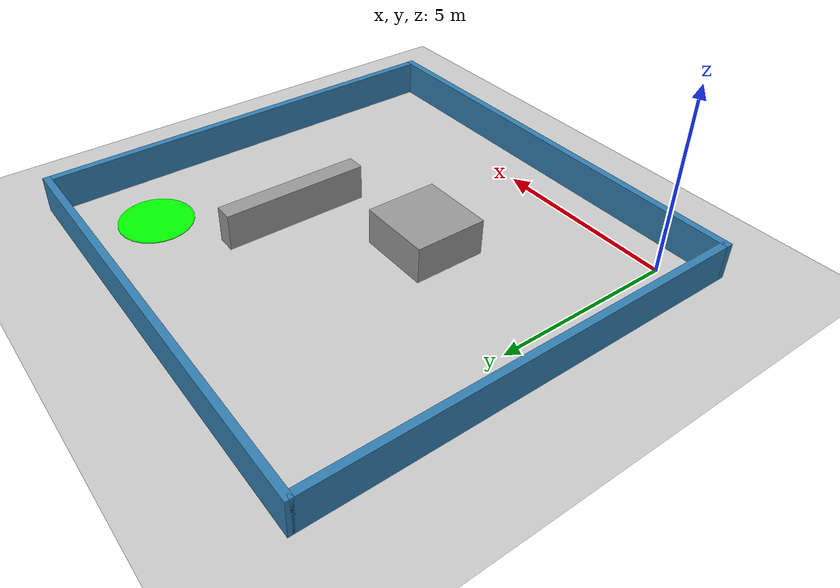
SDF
<?xml version="1.0" ?>
<sdf version="1.8">
  <world name="tp_arena_world">
    <plugin filename="gz-sim-physics-system" name="gz::sim::systems::Physics"></plugin>
    <plugin filename="gz-sim-scene-broadcaster-system" name="gz::sim::systems::SceneBroadcaster"></plugin>
    <plugin filename="gz-sim-user-commands-system" name="gz::sim::systems::UserCommands"></plugin>

    <light type="directional" name="sun">
      <cast_shadows>true</cast_shadows>
      <pose>0 0 10 0 0 0</pose>
      <diffuse>0.8 0.8 0.8 1</diffuse>
      <specular>0.2 0.2 0.2 1</specular>
      <attenuation>
        <range>1000</range>
        <constant>0.9</constant>
        <linear>0.01</linear>
        <quadratic>0.001</quadratic>
      </attenuation>
      <direction>-0.5 0.1 -0.9</direction>
    </light>

    <model name="ground_plane">
      <static>true</static>
      <link name="link">
        <collision name="collision">
          <geometry><plane><normal>0 0 1</normal><size>100 100</size></plane></geometry>
        </collision>
        <visual name="visual">
          <geometry><plane><normal>0 0 1</normal><size>100 100</size></plane></geometry>
          <material>
            <ambient>0.8 0.8 0.8 1</ambient>
            <diffuse>0.8 0.8 0.8 1</diffuse>
            <specular>0.8 0.8 0.8 1</specular>
          </material>
        </visual>
      </link>
    </model>

    <model name="goal_marker">
      <static>true</static>
      <pose>9.0 9.0 0.01 0 0 0</pose>
      <link name="link">
        <visual name="visual">
          <geometry>
            <cylinder>
              <radius>1.0</radius>
              <length>0.02</length>
            </cylinder>
          </geometry>
          <material>
            <ambient>0.0 1.0 0.0 1.0</ambient>
            <diffuse>0.0 1.0 0.0 1.0</diffuse>
            <specular>0.1 0.1 0.1 1.0</specular>
          </material>
        </visual>
      </link>
    </model>

    <model name="simple_maze">
      <static>true</static>

      <link name="wall_south">
        <pose>5 -1 0.5 0 0 0</pose>
        <collision name="col"><geometry><box><size>12.2 0.2 1</size></box></geometry></collision>
        <visual name="vis">
          <geometry><box><size>12.2 0.2 1</size></box></geometry>
          <material><ambient>0.2 0.5 0.7 1</ambient><diffuse>0.2 0.5 0.7 1</diffuse></material>
        </visual>
      </link>

      <link name="wall_north">
        <pose>5 11 0.5 0 0 0</pose>
        <collision name="col"><geometry><box><size>12.2 0.2 1</size></box></geometry></collision>
        <visual name="vis">
          <geometry><box><size>12.2 0.2 1</size></box></geometry>
          <material><ambient>0.2 0.5 0.7 1</ambient><diffuse>0.2 0.5 0.7 1</diffuse></material>
        </visual>
      </link>

      <link name="wall_west">
        <pose>-1 5 0.5 0 0 0</pose>
        <collision name="col"><geometry><box><size>0.2 12 1</size></box></geometry></collision>
        <visual name="vis">
          <geometry><box><size>0.2 12 1</size></box></geometry>
          <material><ambient>0.2 0.5 0.7 1</ambient><diffuse>0.2 0.5 0.7 1</diffuse></material>
        </visual>
      </link>

      <link name="wall_east">
        <pose>11 5 0.5 0 0 0</pose>
        <collision name="col"><geometry><box><size>0.2 12 1</size></box></geometry></collision>
        <visual name="vis">
          <geometry><box><size>0.2 12 1</size></box></geometry>
          <material><ambient>0.2 0.5 0.7 1</ambient><diffuse>0.2 0.5 0.7 1</diffuse></material>
        </visual>
      </link>

      <link name="obstacle_1">
        <pose>4 4 0.5 0 0 0</pose>
        <collision name="col"><geometry><box><size>2 2 1</size></box></geometry></collision>
        <visual name="vis">
          <geometry><box><size>2 2 1</size></box></geometry>
          <material><ambient>0.6 0.6 0.6 1</ambient><diffuse>0.6 0.6 0.6 1</diffuse></material>
        </visual>
      </link>

      <link name="obstacle_2">
        <pose>7 6 0.5 0 0 0</pose>
        <collision name="col"><geometry><box><size>0.5 4 1</size></box></geometry></collision>
        <visual name="vis">
          <geometry><box><size>0.5 4 1</size></box></geometry>
          <material><ambient>0.6 0.6 0.6 1</ambient><diffuse>0.6 0.6 0.6 1</diffuse></material>
        </visual>
      </link>

    </model>
  </world>
</sdf>
